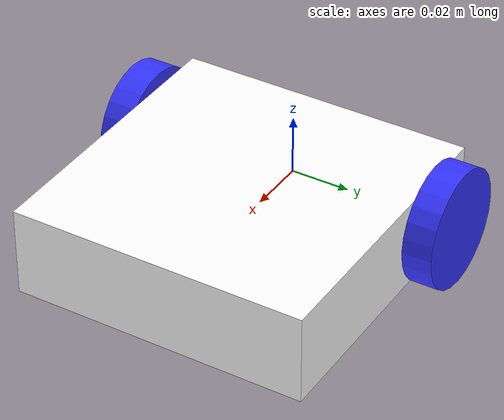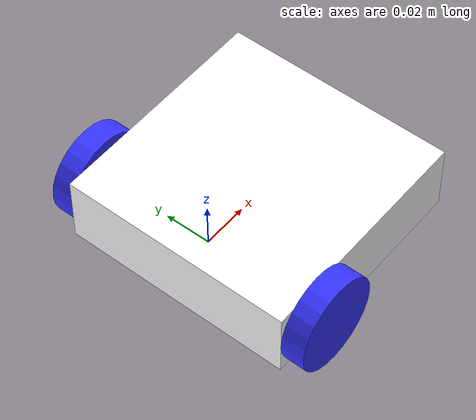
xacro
<?xml version="1.0"?>
<robot xmlns:xacro="http://www.ros.org/wiki/xacro"  name="robot">

    <xacro:include filename="inertial_macros.xacro"/>

    <!-- COLORS -->

    <material name="white">
        <color rgba="1 1 1 1"/>
    </material>

    <material name="orange">
        <color rgba="1 0.3 0.1 1"/>
    </material>

    <material name="blue">
        <color rgba="0.2 0.2 1 1"/>
    </material>

    <!-- BASE LINK -->

    <link name="base_link">

    </link>

    <!-- CHASSIS LINK -->

    <joint name="chassis_joint" type="fixed">
        <parent link="base_link"/>
        <child link="chassis"/>
        <origin xyz="-0.02 0 -0.015" rpy="0 0 0"/>
    </joint>

    <link name="chassis">
        <visual>
            <origin xyz="0.05 0 0.015"/>
            <geometry>
                <box size="0.1 0.1 0.03"/>
            </geometry>
            <material name="white"/>
        </visual>
        <collision>
            <origin xyz="0.05 0 0.015"/>
            <geometry>
                <box size="0.1 0.1 0.03"/>
            </geometry>
        </collision>
        <xacro:inertial_box mass="0.2" x="0.1" y="0.1" z="0.03">
            <origin xyz="0.05 0 0.015" rpy="0 0 0"/>
        </xacro:inertial_box>
    </link>

    <gazebo reference="chassis">
        <material>Gazebo/White</material>
    </gazebo>

    <!-- LEFT WHEEL LINK -->

    <joint name="left_wheel_joint" type="continuous">
        <parent link="base_link"/>
        <child link="left_wheel"/>
        <origin xyz="0 0.05 0" rpy="-${pi/2} 0 0"/>
        <axis xyz="0 0 1"/>
    </joint>

    <link name="left_wheel">
        <visual>
            <origin xyz="0 0 0.005"/>
            <geometry>
                <cylinder radius="0.02" length="0.01"/>
            </geometry>
            <material name="blue"/>
        </visual>
        <collision>
            <origin xyz="0 0 0.005"/>
            <geometry>
                <cylinder radius="0.02" length="0.01"/>
            </geometry>
        </collision>
        <xacro:inertial_cylinder mass="0.05" length="0.01" radius="0.02">
            <origin xyz="0 0 0.005" rpy="0 0 0"/>
        </xacro:inertial_cylinder>
    </link>

    <gazebo reference="left_wheel">
        <material>Gazebo/Blue</material>
    </gazebo>

    <!-- RIGHT WHEEL LINK -->

    <joint name="right_wheel_joint" type="continuous">
        <parent link="base_link"/>
        <child link="right_wheel"/>
        <origin xyz="0 -0.05 0" rpy="${pi/2} 0 0"/>
        <axis xyz="0 0 -1"/>
    </joint>

    <link name="right_wheel">
        <visual>
            <origin xyz="0 0 0.005"/>
            <geometry>
                <cylinder radius="0.02" length="0.01"/>
            </geometry>
            <material name="blue"/>
        </visual>
        <collision>
            <origin xyz="0 0 0.005"/>
            <geometry>
                <cylinder radius="0.02" length="0.01"/>
            </geometry>
        </collision>
        <xacro:inertial_cylinder mass="0.05" length="0.01" radius="0.02">
            <origin xyz="0 0 0.005" rpy="0 0 0"/>
        </xacro:inertial_cylinder>
    </link>

    <gazebo reference="right_wheel">
        <material>Gazebo/Blue</material>
    </gazebo>

    <!-- CASTOR WHEEL LINK -->

    <joint name="castor_wheel_joint" type="fixed">
        <parent link="base_link"/>
        <child link="castor_wheel"/>
        <origin xyz="0.07 0 -0.01"/>
    </joint>

    <link name="castor_wheel">
        <visual>
            <geometry>
                <sphere radius="0.01"/>
            </geometry>
            <material name="blue"/>
        </visual>
        <collision>
            <geometry>
                <sphere radius="0.01"/>
            </geometry>
        </collision>
        <xacro:inertial_sphere mass="0.01" radius="0.01">
            <origin xyz="0 0 0" rpy="0 0 0"/>
        </xacro:inertial_sphere>
    </link>

    <gazebo reference="castor_wheel">
        <material>Gazebo/Blue</material>
        <mu1 value="0.001"/>
        <mu2 value="0.001"/>
    </gazebo>

</robot>
